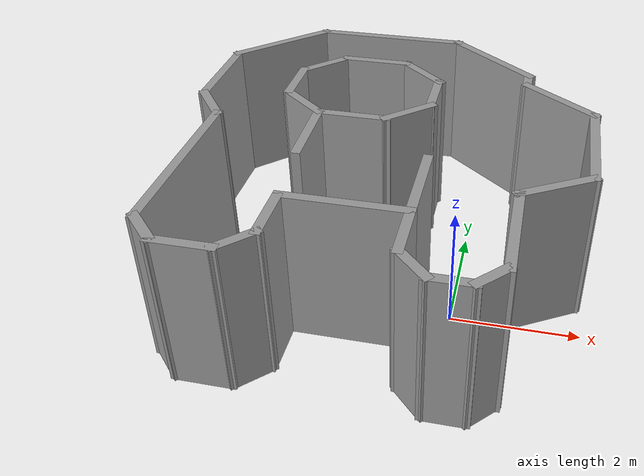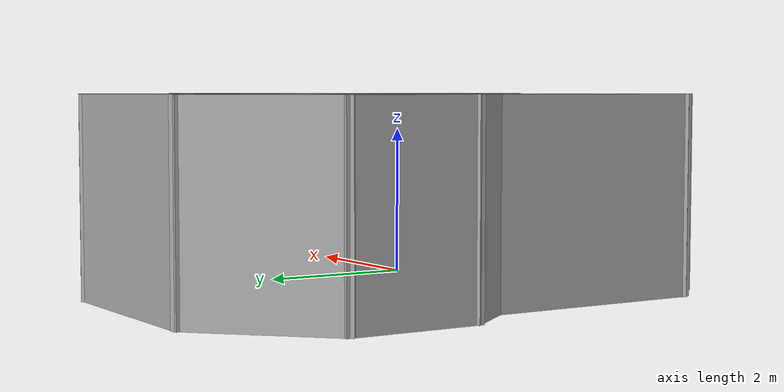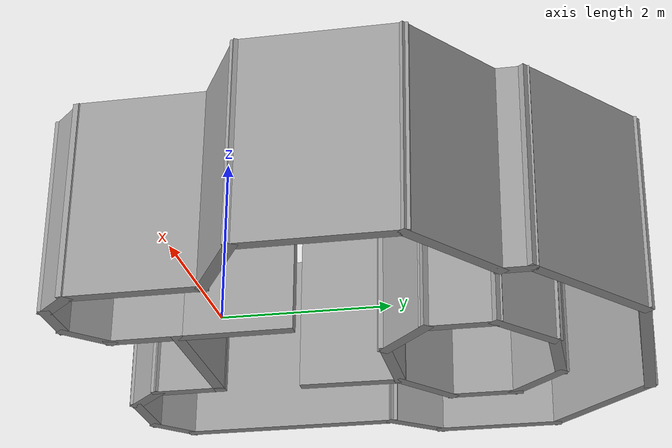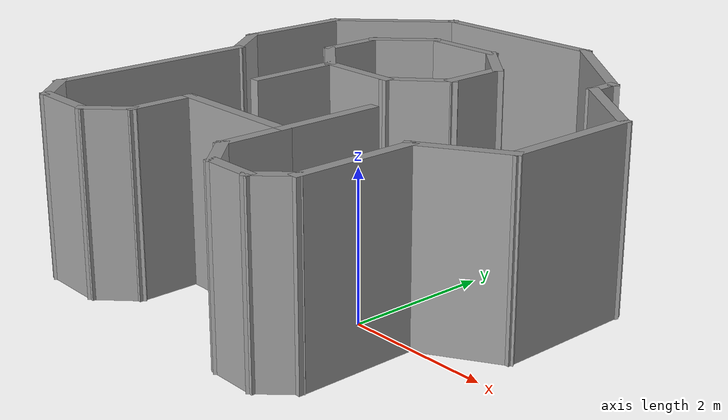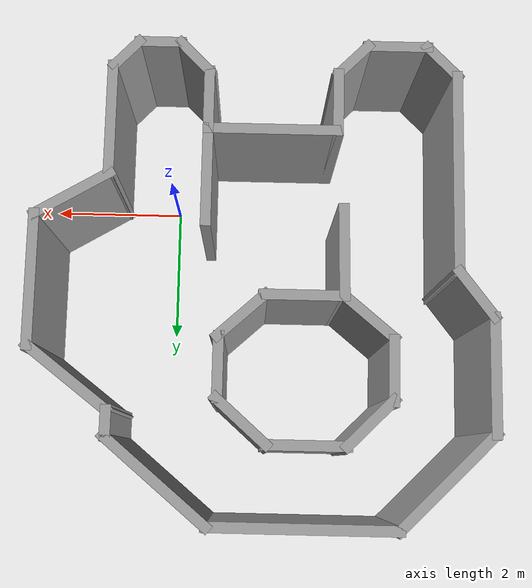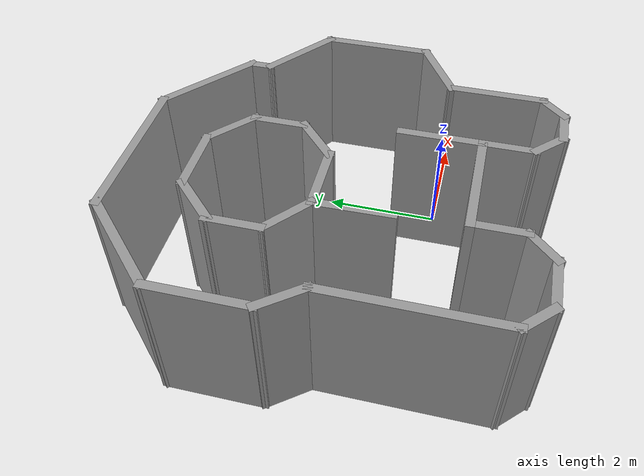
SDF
<?xml version='1.0'?>
<sdf version='1.7'>
  <model name='amogus'>
    <pose>-1.33793 1.43827 0 0 -0 0</pose>
    <link name='Wall_21'>
      <collision name='Wall_21_Collision'>
        <geometry>
          <box>
            <size>3 0.15 2.5</size>
          </box>
        </geometry>
        <pose>0 0 1.25 0 -0 0</pose>
      </collision>
      <visual name='Wall_21_Visual'>
        <pose>0 0 1.25 0 -0 0</pose>
        <geometry>
          <box>
            <size>3 0.15 2.5</size>
          </box>
        </geometry>
        <material>
          <script>
            <uri>file://media/materials/scripts/gazebo.material</uri>
            <name>Gazebo/Grey</name>
          </script>
          <ambient>1 1 1 1</ambient>
        </material>
        <meta>
          <layer>0</layer>
        </meta>
      </visual>
      <pose>-2.73466 -1.55355 0 0 -0 -1.5708</pose>
    </link>
    <link name='Wall_22'>
      <collision name='Wall_22_Collision'>
        <geometry>
          <box>
            <size>0.75 0.15 2.5</size>
          </box>
        </geometry>
        <pose>0 0 1.25 0 -0 0</pose>
      </collision>
      <visual name='Wall_22_Visual'>
        <pose>0 0 1.25 0 -0 0</pose>
        <geometry>
          <box>
            <size>0.75 0.15 2.5</size>
          </box>
        </geometry>
        <material>
          <script>
            <uri>file://media/materials/scripts/gazebo.material</uri>
            <name>Gazebo/Grey</name>
          </script>
          <ambient>1 1 1 1</ambient>
        </material>
        <meta>
          <layer>0</layer>
        </meta>
      </visual>
      <pose>-2.52253 -3.19069 0 0 -0 -0.785398</pose>
    </link>
    <link name='Wall_24'>
      <collision name='Wall_24_Collision'>
        <geometry>
          <box>
            <size>1 0.15 2.5</size>
          </box>
        </geometry>
        <pose>0 0 1.25 0 -0 0</pose>
      </collision>
      <visual name='Wall_24_Visual'>
        <pose>0 0 1.25 0 -0 0</pose>
        <geometry>
          <box>
            <size>1 0.15 2.5</size>
          </box>
        </geometry>
        <material>
          <script>
            <uri>file://media/materials/scripts/gazebo.material</uri>
            <name>Gazebo/Grey</name>
          </script>
          <ambient>1 1 1 1</ambient>
        </material>
        <meta>
          <layer>0</layer>
        </meta>
      </visual>
      <pose>-1.8854 -3.40282 0 0 -0 0</pose>
    </link>
    <link name='Wall_25'>
      <collision name='Wall_25_Collision'>
        <geometry>
          <box>
            <size>0.75 0.15 2.5</size>
          </box>
        </geometry>
        <pose>0 0 1.25 0 -0 0</pose>
      </collision>
      <visual name='Wall_25_Visual'>
        <pose>0 0 1.25 0 -0 0</pose>
        <geometry>
          <box>
            <size>0.75 0.15 2.5</size>
          </box>
        </geometry>
        <material>
          <script>
            <uri>file://media/materials/scripts/gazebo.material</uri>
            <name>Gazebo/Grey</name>
          </script>
          <ambient>1 1 1 1</ambient>
        </material>
        <meta>
          <layer>0</layer>
        </meta>
      </visual>
      <pose>-1.24827 -3.19069 0 0 -0 0.785398</pose>
    </link>
    <link name='Wall_26'>
      <collision name='Wall_26_Collision'>
        <geometry>
          <box>
            <size>1 0.15 2.5</size>
          </box>
        </geometry>
        <pose>0 0 1.25 0 -0 0</pose>
      </collision>
      <visual name='Wall_26_Visual'>
        <pose>0 0 1.25 0 -0 0</pose>
        <geometry>
          <box>
            <size>1 0.15 2.5</size>
          </box>
        </geometry>
        <material>
          <script>
            <uri>file://media/materials/scripts/gazebo.material</uri>
            <name>Gazebo/Grey</name>
          </script>
          <ambient>1 1 1 1</ambient>
        </material>
        <meta>
          <layer>0</layer>
        </meta>
      </visual>
      <pose>-1.03613 -2.55355 0 0 -0 1.5708</pose>
    </link>
    <link name='Wall_27'>
      <collision name='Wall_27_Collision'>
        <geometry>
          <box>
            <size>2 0.15 2.5</size>
          </box>
        </geometry>
        <pose>0 0 1.25 0 -0 0</pose>
      </collision>
      <visual name='Wall_27_Visual'>
        <pose>0 0 1.25 0 -0 0</pose>
        <geometry>
          <box>
            <size>2 0.15 2.5</size>
          </box>
        </geometry>
        <material>
          <script>
            <uri>file://media/materials/scripts/gazebo.material</uri>
            <name>Gazebo/Grey</name>
          </script>
          <ambient>1 1 1 1</ambient>
        </material>
        <meta>
          <layer>0</layer>
        </meta>
      </visual>
      <pose>-0.111134 -2.12855 0 0 -0 0</pose>
    </link>
    <link name='Wall_28'>
      <collision name='Wall_28_Collision'>
        <geometry>
          <box>
            <size>1.00095 0.15 2.5</size>
          </box>
        </geometry>
        <pose>0 0 1.25 0 -0 0</pose>
      </collision>
      <visual name='Wall_28_Visual'>
        <pose>0 0 1.25 0 -0 0</pose>
        <geometry>
          <box>
            <size>1.00095 0.15 2.5</size>
          </box>
        </geometry>
        <material>
          <script>
            <uri>file://media/materials/scripts/gazebo.material</uri>
            <name>Gazebo/Grey</name>
          </script>
          <ambient>1 1 1 1</ambient>
        </material>
        <meta>
          <layer>0</layer>
        </meta>
      </visual>
      <pose>0.813866 -2.55355 0 0 -0 -1.5708</pose>
    </link>
    <link name='Wall_29'>
      <collision name='Wall_29_Collision'>
        <geometry>
          <box>
            <size>0.75 0.15 2.5</size>
          </box>
        </geometry>
        <pose>0 0 1.25 0 -0 0</pose>
      </collision>
      <visual name='Wall_29_Visual'>
        <pose>0 0 1.25 0 -0 0</pose>
        <geometry>
          <box>
            <size>0.75 0.15 2.5</size>
          </box>
        </geometry>
        <material>
          <script>
            <uri>file://media/materials/scripts/gazebo.material</uri>
            <name>Gazebo/Grey</name>
          </script>
          <ambient>1 1 1 1</ambient>
        </material>
        <meta>
          <layer>0</layer>
        </meta>
      </visual>
      <pose>1.026 -3.19069 0 0 -0 -0.785398</pose>
    </link>
    <link name='Wall_41'>
      <collision name='Wall_41_Collision'>
        <geometry>
          <box>
            <size>1.75 0.15 2.5</size>
          </box>
        </geometry>
        <pose>0 0 1.25 0 -0 0</pose>
      </collision>
      <visual name='Wall_41_Visual'>
        <pose>0 0 1.25 0 -0 0</pose>
        <geometry>
          <box>
            <size>1.75 0.15 2.5</size>
          </box>
        </geometry>
        <material>
          <script>
            <uri>file://media/materials/scripts/gazebo.material</uri>
            <name>Gazebo/Grey</name>
          </script>
          <ambient>1 1 1 1</ambient>
        </material>
        <meta>
          <layer>0</layer>
        </meta>
      </visual>
      <pose>-3.21407 1.29467 0 0 -0 -1.5708</pose>
    </link>
    <link name='Wall_42'>
      <collision name='Wall_42_Collision'>
        <geometry>
          <box>
            <size>0.936281 0.15 2.5</size>
          </box>
        </geometry>
        <pose>0 0 1.25 0 -0 0</pose>
      </collision>
      <visual name='Wall_42_Visual'>
        <pose>0 0 1.25 0 -0 0</pose>
        <geometry>
          <box>
            <size>0.936281 0.15 2.5</size>
          </box>
        </geometry>
        <material>
          <script>
            <uri>file://media/materials/scripts/gazebo.material</uri>
            <name>Gazebo/Grey</name>
          </script>
          <ambient>1 1 1 1</ambient>
        </material>
        <meta>
          <layer>0</layer>
        </meta>
      </visual>
      <pose>-2.97437 0.183058 0 0 -0 -0.915096</pose>
    </link>
    <link name='Wall_44'>
      <collision name='Wall_44_Collision'>
        <geometry>
          <box>
            <size>1 0.15 2.5</size>
          </box>
        </geometry>
        <pose>0 0 1.25 0 -0 0</pose>
      </collision>
      <visual name='Wall_44_Visual'>
        <pose>0 0 1.25 0 -0 0</pose>
        <geometry>
          <box>
            <size>1 0.15 2.5</size>
          </box>
        </geometry>
        <material>
          <script>
            <uri>file://media/materials/scripts/gazebo.material</uri>
            <name>Gazebo/Grey</name>
          </script>
          <ambient>1 1 1 1</ambient>
        </material>
        <meta>
          <layer>0</layer>
        </meta>
      </visual>
      <pose>-1.82955 1.2619 0 0 -0 1.5708</pose>
    </link>
    <link name='Wall_45'>
      <collision name='Wall_45_Collision'>
        <geometry>
          <box>
            <size>1.05089 0.15 2.5</size>
          </box>
        </geometry>
        <pose>0 0 1.25 0 -0 0</pose>
      </collision>
      <visual name='Wall_45_Visual'>
        <pose>0 0 1.25 0 -0 0</pose>
        <geometry>
          <box>
            <size>1.05089 0.15 2.5</size>
          </box>
        </geometry>
        <material>
          <script>
            <uri>file://media/materials/scripts/gazebo.material</uri>
            <name>Gazebo/Grey</name>
          </script>
          <ambient>1 1 1 1</ambient>
        </material>
        <meta>
          <layer>0</layer>
        </meta>
      </visual>
      <pose>-1.51104 1.9853 0 0 -0 0.785398</pose>
    </link>
    <link name='Wall_46'>
      <collision name='Wall_46_Collision'>
        <geometry>
          <box>
            <size>1.25 0.15 2.5</size>
          </box>
        </geometry>
        <pose>0 0 1.25 0 -0 0</pose>
      </collision>
      <visual name='Wall_46_Visual'>
        <pose>0 0 1.25 0 -0 0</pose>
        <geometry>
          <box>
            <size>1.25 0.15 2.5</size>
          </box>
        </geometry>
        <material>
          <script>
            <uri>file://media/materials/scripts/gazebo.material</uri>
            <name>Gazebo/Grey</name>
          </script>
          <ambient>1 1 1 1</ambient>
        </material>
        <meta>
          <layer>0</layer>
        </meta>
      </visual>
      <pose>-0.642529 2.30381 0 0 -0 0</pose>
    </link>
    <link name='Wall_47'>
      <collision name='Wall_47_Collision'>
        <geometry>
          <box>
            <size>1.08107 0.15 2.5</size>
          </box>
        </geometry>
        <pose>0 0 1.25 0 -0 0</pose>
      </collision>
      <visual name='Wall_47_Visual'>
        <pose>0 0 1.25 0 -0 0</pose>
        <geometry>
          <box>
            <size>1.08107 0.15 2.5</size>
          </box>
        </geometry>
        <material>
          <script>
            <uri>file://media/materials/scripts/gazebo.material</uri>
            <name>Gazebo/Grey</name>
          </script>
          <ambient>1 1 1 1</ambient>
        </material>
        <meta>
          <layer>0</layer>
        </meta>
      </visual>
      <pose>0.256153 1.99535 0 0 -0 -0.724259</pose>
    </link>
    <link name='Wall_48'>
      <collision name='Wall_48_Collision'>
        <geometry>
          <box>
            <size>1 0.15 2.5</size>
          </box>
        </geometry>
        <pose>0 0 1.25 0 -0 0</pose>
      </collision>
      <visual name='Wall_48_Visual'>
        <pose>0 0 1.25 0 -0 0</pose>
        <geometry>
          <box>
            <size>1 0.15 2.5</size>
          </box>
        </geometry>
        <material>
          <script>
            <uri>file://media/materials/scripts/gazebo.material</uri>
            <name>Gazebo/Grey</name>
          </script>
          <ambient>1 1 1 1</ambient>
        </material>
        <meta>
          <layer>0</layer>
        </meta>
      </visual>
      <pose>0.584721 1.2619 0 0 -0 -1.5708</pose>
    </link>
    <link name='Wall_51'>
      <collision name='Wall_51_Collision'>
        <geometry>
          <box>
            <size>1.3908 0.15 2.5</size>
          </box>
        </geometry>
        <pose>0 0 1.25 0 -0 0</pose>
      </collision>
      <visual name='Wall_51_Visual'>
        <pose>0 0 1.25 0 -0 0</pose>
        <geometry>
          <box>
            <size>1.3908 0.15 2.5</size>
          </box>
        </geometry>
        <material>
          <script>
            <uri>file://media/materials/scripts/gazebo.material</uri>
            <name>Gazebo/Grey</name>
          </script>
          <ambient>1 1 1 1</ambient>
        </material>
        <meta>
          <layer>0</layer>
        </meta>
      </visual>
      <pose>-1.13563 -0.37304 0 0 -0 1.587</pose>
    </link>
    <link name='Wall_53'>
      <collision name='Wall_53_Collision'>
        <geometry>
          <box>
            <size>1.5 0.15 2.5</size>
          </box>
        </geometry>
        <pose>0 0 1.25 0 -0 0</pose>
      </collision>
      <visual name='Wall_53_Visual'>
        <pose>0 0 1.25 0 -0 0</pose>
        <geometry>
          <box>
            <size>1.5 0.15 2.5</size>
          </box>
        </geometry>
        <material>
          <script>
            <uri>file://media/materials/scripts/gazebo.material</uri>
            <name>Gazebo/Grey</name>
          </script>
          <ambient>1 1 1 1</ambient>
        </material>
        <meta>
          <layer>0</layer>
        </meta>
      </visual>
      <pose>0.813866 -1.45355 0 0 -0 -1.5708</pose>
    </link>
    <link name='Wall_55'>
      <collision name='Wall_55_Collision'>
        <geometry>
          <box>
            <size>1.0399 0.15 2.5</size>
          </box>
        </geometry>
        <pose>0 0 1.25 0 -0 0</pose>
      </collision>
      <visual name='Wall_55_Visual'>
        <pose>0 0 1.25 0 -0 0</pose>
        <geometry>
          <box>
            <size>1.0399 0.15 2.5</size>
          </box>
        </geometry>
        <material>
          <script>
            <uri>file://media/materials/scripts/gazebo.material</uri>
            <name>Gazebo/Grey</name>
          </script>
          <ambient>1 1 1 1</ambient>
        </material>
        <meta>
          <layer>0</layer>
        </meta>
      </visual>
      <pose>-1.48762 0.532071 0 0 -0 -0.694343</pose>
    </link>
    <link name='Wall_56'>
      <collision name='Wall_56_Collision'>
        <geometry>
          <box>
            <size>1.25 0.15 2.5</size>
          </box>
        </geometry>
        <pose>0 0 1.25 0 -0 0</pose>
      </collision>
      <visual name='Wall_56_Visual'>
        <pose>0 0 1.25 0 -0 0</pose>
        <geometry>
          <box>
            <size>1.25 0.15 2.5</size>
          </box>
        </geometry>
        <material>
          <script>
            <uri>file://media/materials/scripts/gazebo.material</uri>
            <name>Gazebo/Grey</name>
          </script>
          <ambient>1 1 1 1</ambient>
        </material>
        <meta>
          <layer>0</layer>
        </meta>
      </visual>
      <pose>-0.575576 0.247358 0 0 -0 0</pose>
    </link>
    <link name='Wall_57'>
      <collision name='Wall_57_Collision'>
        <geometry>
          <box>
            <size>1.02792 0.15 2.5</size>
          </box>
        </geometry>
        <pose>0 0 1.25 0 -0 0</pose>
      </collision>
      <visual name='Wall_57_Visual'>
        <pose>0 0 1.25 0 -0 0</pose>
        <geometry>
          <box>
            <size>1.02792 0.15 2.5</size>
          </box>
        </geometry>
        <material>
          <script>
            <uri>file://media/materials/scripts/gazebo.material</uri>
            <name>Gazebo/Grey</name>
          </script>
          <ambient>1 1 1 1</ambient>
        </material>
        <meta>
          <layer>0</layer>
        </meta>
      </visual>
      <pose>0.279573 0.542128 0 0 -0 0.736259</pose>
    </link>
    <link name='Wall_59'>
      <collision name='Wall_59_Collision'>
        <geometry>
          <box>
            <size>0.75 0.15 2.5</size>
          </box>
        </geometry>
        <pose>0 0 1.25 0 -0 0</pose>
      </collision>
      <visual name='Wall_59_Visual'>
        <pose>0 0 1.25 0 -0 0</pose>
        <geometry>
          <box>
            <size>0.75 0.15 2.5</size>
          </box>
        </geometry>
        <material>
          <script>
            <uri>file://media/materials/scripts/gazebo.material</uri>
            <name>Gazebo/Grey</name>
          </script>
          <ambient>1 1 1 1</ambient>
        </material>
        <meta>
          <layer>0</layer>
        </meta>
      </visual>
      <pose>1.53813 -3.40282 0 0 -0 0</pose>
    </link>
    <link name='Wall_60'>
      <collision name='Wall_60_Collision'>
        <geometry>
          <box>
            <size>0.650645 0.15 2.5</size>
          </box>
        </geometry>
        <pose>0 0 1.25 0 -0 0</pose>
      </collision>
      <visual name='Wall_60_Visual'>
        <pose>0 0 1.25 0 -0 0</pose>
        <geometry>
          <box>
            <size>0.650645 0.15 2.5</size>
          </box>
        </geometry>
        <material>
          <script>
            <uri>file://media/materials/scripts/gazebo.material</uri>
            <name>Gazebo/Grey</name>
          </script>
          <ambient>1 1 1 1</ambient>
        </material>
        <meta>
          <layer>0</layer>
        </meta>
      </visual>
      <pose>2.01003 -3.22086 0 0 -0 0.81381</pose>
    </link>
    <link name='Wall_61'>
      <collision name='Wall_61_Collision'>
        <geometry>
          <box>
            <size>1.75 0.15 2.5</size>
          </box>
        </geometry>
        <pose>0 0 1.25 0 -0 0</pose>
      </collision>
      <visual name='Wall_61_Visual'>
        <pose>0 0 1.25 0 -0 0</pose>
        <geometry>
          <box>
            <size>1.75 0.15 2.5</size>
          </box>
        </geometry>
        <material>
          <script>
            <uri>file://media/materials/scripts/gazebo.material</uri>
            <name>Gazebo/Grey</name>
          </script>
          <ambient>1 1 1 1</ambient>
        </material>
        <meta>
          <layer>0</layer>
        </meta>
      </visual>
      <pose>2.20205 -2.23889 0 0 -0 1.5708</pose>
    </link>
    <link name='Wall_66'>
      <collision name='Wall_66_Collision'>
        <geometry>
          <box>
            <size>1.34991 0.15 2.5</size>
          </box>
        </geometry>
        <pose>0 0 1.25 0 -0 0</pose>
      </collision>
      <visual name='Wall_66_Visual'>
        <pose>0 0 1.25 0 -0 0</pose>
        <geometry>
          <box>
            <size>1.34991 0.15 2.5</size>
          </box>
        </geometry>
        <material>
          <script>
            <uri>file://media/materials/scripts/gazebo.material</uri>
            <name>Gazebo/Grey</name>
          </script>
          <ambient>1 1 1 1</ambient>
        </material>
        <meta>
          <layer>0</layer>
        </meta>
      </visual>
      <pose>2.69848 -1.13372 0 0 -0 0.533624</pose>
    </link>
    <link name='Wall_67'>
      <collision name='Wall_67_Collision'>
        <geometry>
          <box>
            <size>2 0.15 2.5</size>
          </box>
        </geometry>
        <pose>0 0 1.25 0 -0 0</pose>
      </collision>
      <visual name='Wall_67_Visual'>
        <pose>0 0 1.25 0 -0 0</pose>
        <geometry>
          <box>
            <size>2 0.15 2.5</size>
          </box>
        </geometry>
        <material>
          <script>
            <uri>file://media/materials/scripts/gazebo.material</uri>
            <name>Gazebo/Grey</name>
          </script>
          <ambient>1 1 1 1</ambient>
        </material>
        <meta>
          <layer>0</layer>
        </meta>
      </visual>
      <pose>3.21502 0.096447 0 0 -0 1.5708</pose>
    </link>
    <link name='Wall_71'>
      <collision name='Wall_71_Collision'>
        <geometry>
          <box>
            <size>2 0.15 2.5</size>
          </box>
        </geometry>
        <pose>0 0 1.25 0 -0 0</pose>
      </collision>
      <visual name='Wall_71_Visual'>
        <pose>0 0 1.25 0 -0 0</pose>
        <geometry>
          <box>
            <size>2 0.15 2.5</size>
          </box>
        </geometry>
        <material>
          <script>
            <uri>file://media/materials/scripts/gazebo.material</uri>
            <name>Gazebo/Grey</name>
          </script>
          <ambient>1 1 1 1</ambient>
        </material>
        <meta>
          <layer>0</layer>
        </meta>
      </visual>
      <pose>-2.55999 2.74874 0 0 -0 0.785398</pose>
    </link>
    <link name='Wall_73'>
      <collision name='Wall_73_Collision'>
        <geometry>
          <box>
            <size>2.75 0.15 2.5</size>
          </box>
        </geometry>
        <pose>0 0 1.25 0 -0 0</pose>
      </collision>
      <visual name='Wall_73_Visual'>
        <pose>0 0 1.25 0 -0 0</pose>
        <geometry>
          <box>
            <size>2.75 0.15 2.5</size>
          </box>
        </geometry>
        <material>
          <script>
            <uri>file://media/materials/scripts/gazebo.material</uri>
            <name>Gazebo/Grey</name>
          </script>
          <ambient>1 1 1 1</ambient>
        </material>
        <meta>
          <layer>0</layer>
        </meta>
      </visual>
      <pose>-0.605921 3.40282 0 0 -0 0</pose>
    </link>
    <link name='Wall_76'>
      <collision name='Wall_76_Collision'>
        <geometry>
          <box>
            <size>1.98551 0.15 2.5</size>
          </box>
        </geometry>
        <pose>0 0 1.25 0 -0 0</pose>
      </collision>
      <visual name='Wall_76_Visual'>
        <pose>0 0 1.25 0 -0 0</pose>
        <geometry>
          <box>
            <size>1.98551 0.15 2.5</size>
          </box>
        </geometry>
        <material>
          <script>
            <uri>file://media/materials/scripts/gazebo.material</uri>
            <name>Gazebo/Grey</name>
          </script>
          <ambient>1 1 1 1</ambient>
        </material>
        <meta>
          <layer>0</layer>
        </meta>
      </visual>
      <pose>1.40056 2.81702 0 0 -0 -0.692282</pose>
    </link>
    <link name='Wall_77'>
      <collision name='Wall_77_Collision'>
        <geometry>
          <box>
            <size>0.5 0.15 2.5</size>
          </box>
        </geometry>
        <pose>0 0 1.25 0 -0 0</pose>
      </collision>
      <visual name='Wall_77_Visual'>
        <pose>0 0 1.25 0 -0 0</pose>
        <geometry>
          <box>
            <size>0.5 0.15 2.5</size>
          </box>
        </geometry>
        <material>
          <script>
            <uri>file://media/materials/scripts/gazebo.material</uri>
            <name>Gazebo/Grey</name>
          </script>
          <ambient>1 1 1 1</ambient>
        </material>
        <meta>
          <layer>0</layer>
        </meta>
      </visual>
      <pose>2.08693 2.05622 0 0 -0 -1.5708</pose>
    </link>
    <link name='Wall_79'>
      <collision name='Wall_79_Collision'>
        <geometry>
          <box>
            <size>1.56838 0.15 2.5</size>
          </box>
        </geometry>
        <pose>0 0 1.25 0 -0 0</pose>
      </collision>
      <visual name='Wall_79_Visual'>
        <pose>0 0 1.25 0 -0 0</pose>
        <geometry>
          <box>
            <size>1.56838 0.15 2.5</size>
          </box>
        </geometry>
        <material>
          <script>
            <uri>file://media/materials/scripts/gazebo.material</uri>
            <name>Gazebo/Grey</name>
          </script>
          <ambient>1 1 1 1</ambient>
        </material>
        <meta>
          <layer>0</layer>
        </meta>
      </visual>
      <pose>2.65097 1.45133 0 0 -0 -0.651229</pose>
    </link>
    <static>1</static>
  </model>
</sdf>
